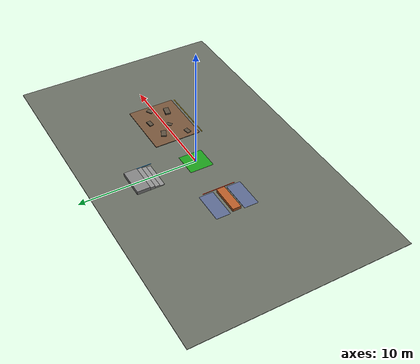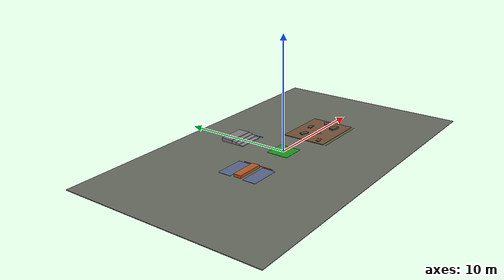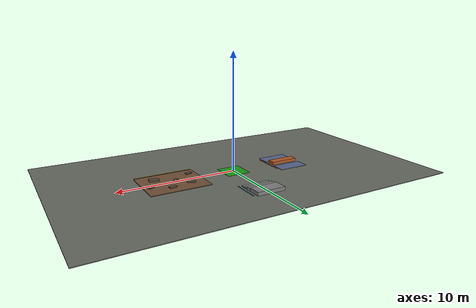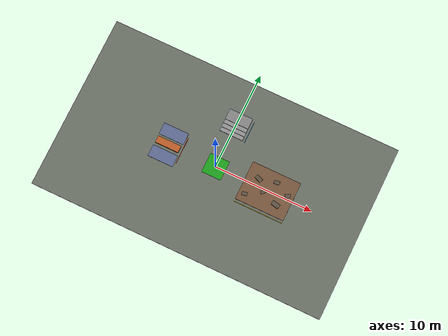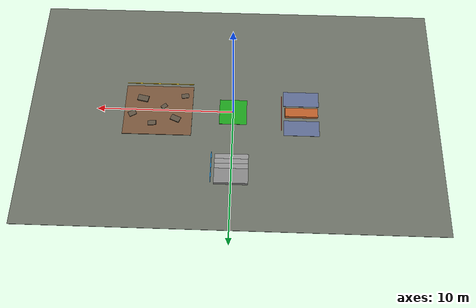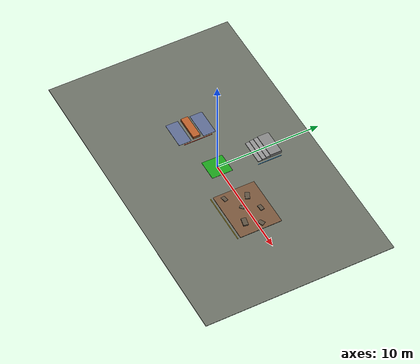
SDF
<?xml version="1.0" ?>
<sdf version="1.9">
  <world name="lynx_test_terrain">

    <!-- Physics                                                       -->
    <physics name="default_physics" type="ode">
      <max_step_size>0.001</max_step_size>
      <real_time_factor>1.0</real_time_factor>
      <real_time_update_rate>1000</real_time_update_rate>
    </physics>

    <!-- Scene / light                                                 -->
    <scene>
      <ambient>0.45 0.45 0.45 1</ambient>
      <background>0.70 0.80 0.95 1</background>
      <shadows>true</shadows>
    </scene>

    <light name="sun" type="directional">
      <cast_shadows>true</cast_shadows>
      <pose>0 0 10 0 0 0</pose>
      <diffuse>0.9 0.9 0.9 1</diffuse>
      <specular>0.2 0.2 0.2 1</specular>
      <attenuation>
        <range>1000</range>
        <constant>0.9</constant>
        <linear>0.01</linear>
        <quadratic>0.001</quadratic>
      </attenuation>
      <direction>-0.5 0.2 -1</direction>
    </light>

    <!-- Ground                                                        -->
    <model name="ground_plane">
      <static>true</static>
      <link name="ground_link">
        <collision name="collision">
          <geometry>
            <box>
              <size>30 18 0.05</size>
            </box>
          </geometry>
          <surface>
            <friction>
              <ode>
                <mu>1.4</mu>
                <mu2>1.4</mu2>
              </ode>
            </friction>
          </surface>
        </collision>
        <visual name="visual">
          <geometry>
            <box>
              <size>30 18 0.05</size>
            </box>
          </geometry>
          <material>
            <ambient>0.40 0.42 0.38 1</ambient>
            <diffuse>0.40 0.42 0.38 1</diffuse>
          </material>
        </visual>
      </link>
      <pose>0 0 -0.025 0 0 0</pose>
    </model>

    <!-- Zone labels                                                   -->

    <!-- Flat spawn/start pad -->
    <model name="spawn_pad">
      <static>true</static>
      <pose>0 0 0.005 0 0 0</pose>
      <link name="link">
        <collision name="collision">
          <geometry>
            <box>
              <size>2.0 2.0 0.02</size>
            </box>
          </geometry>
        </collision>
        <visual name="visual">
          <geometry>
            <box>
              <size>2.0 2.0 0.02</size>
            </box>
          </geometry>
          <material>
            <ambient>0.10 0.45 0.10 1</ambient>
            <diffuse>0.10 0.60 0.10 1</diffuse>
          </material>
        </visual>
      </link>
    </model>

    <!-- Zone 1: rough / uneven terrain                                -->
    <!-- Location: x = 3 to 8                                          -->

    <!-- Base rough strip -->
    <model name="rough_terrain_base">
      <static>true</static>
      <pose>5.5 0 0.025 0 0 0</pose>
      <link name="link">
        <collision name="collision">
          <geometry>
            <box>
              <size>5.0 4.0 0.05</size>
            </box>
          </geometry>
          <surface>
            <friction>
              <ode>
                <mu>1.6</mu>
                <mu2>1.6</mu2>
              </ode>
            </friction>
          </surface>
        </collision>
        <visual name="visual">
          <geometry>
            <box>
              <size>5.0 4.0 0.05</size>
            </box>
          </geometry>
          <material>
            <ambient>0.35 0.25 0.18 1</ambient>
            <diffuse>0.45 0.32 0.22 1</diffuse>
          </material>
        </visual>
      </link>
    </model>

    <!-- Uneven bumps / rocks -->
    <model name="rough_bump_01">
      <static>true</static>
      <pose>3.6 -1.2 0.055 0 0 0.2</pose>
      <link name="link">
        <collision name="collision">
          <geometry><box><size>0.55 0.35 0.10</size></box></geometry>
        </collision>
        <visual name="visual">
          <geometry><box><size>0.55 0.35 0.10</size></box></geometry>
          <material><ambient>0.25 0.22 0.18 1</ambient><diffuse>0.35 0.30 0.24 1</diffuse></material>
        </visual>
      </link>
    </model>

    <model name="rough_bump_02">
      <static>true</static>
      <pose>4.2 0.7 0.075 0 0 -0.4</pose>
      <link name="link">
        <collision name="collision">
          <geometry><box><size>0.70 0.42 0.14</size></box></geometry>
        </collision>
        <visual name="visual">
          <geometry><box><size>0.70 0.42 0.14</size></box></geometry>
          <material><ambient>0.25 0.22 0.18 1</ambient><diffuse>0.35 0.30 0.24 1</diffuse></material>
        </visual>
      </link>
    </model>

    <model name="rough_bump_03">
      <static>true</static>
      <pose>5.1 -0.3 0.045 0 0 0.7</pose>
      <link name="link">
        <collision name="collision">
          <geometry><box><size>0.45 0.30 0.08</size></box></geometry>
        </collision>
        <visual name="visual">
          <geometry><box><size>0.45 0.30 0.08</size></box></geometry>
          <material><ambient>0.25 0.22 0.18 1</ambient><diffuse>0.35 0.30 0.24 1</diffuse></material>
        </visual>
      </link>
    </model>

    <model name="rough_bump_04">
      <static>true</static>
      <pose>5.9 1.1 0.065 0 0 0.1</pose>
      <link name="link">
        <collision name="collision">
          <geometry><box><size>0.60 0.35 0.12</size></box></geometry>
        </collision>
        <visual name="visual">
          <geometry><box><size>0.60 0.35 0.12</size></box></geometry>
          <material><ambient>0.25 0.22 0.18 1</ambient><diffuse>0.35 0.30 0.24 1</diffuse></material>
        </visual>
      </link>
    </model>

    <model name="rough_bump_05">
      <static>true</static>
      <pose>6.7 -0.9 0.095 0 0 -0.2</pose>
      <link name="link">
        <collision name="collision">
          <geometry><box><size>0.80 0.45 0.18</size></box></geometry>
        </collision>
        <visual name="visual">
          <geometry><box><size>0.80 0.45 0.18</size></box></geometry>
          <material><ambient>0.25 0.22 0.18 1</ambient><diffuse>0.35 0.30 0.24 1</diffuse></material>
        </visual>
      </link>
    </model>

    <model name="rough_bump_06">
      <static>true</static>
      <pose>7.4 0.35 0.060 0 0 0.5</pose>
      <link name="link">
        <collision name="collision">
          <geometry><box><size>0.55 0.40 0.11</size></box></geometry>
        </collision>
        <visual name="visual">
          <geometry><box><size>0.55 0.40 0.11</size></box></geometry>
          <material><ambient>0.25 0.22 0.18 1</ambient><diffuse>0.35 0.30 0.24 1</diffuse></material>
        </visual>
      </link>
    </model>

    <!-- Zone 2: stairs                                                -->
    <!-- Location: x = 0, y = 5                                        -->
    <!-- Approach from y = 2.5 toward y = 5                             -->

    <model name="stairs_step_01">
      <static>true</static>
      <pose>0 3.6 0.035 0 0 0</pose>
      <link name="link">
        <collision name="collision">
          <geometry><box><size>2.4 0.40 0.07</size></box></geometry>
          <surface><friction><ode><mu>1.5</mu><mu2>1.5</mu2></ode></friction></surface>
        </collision>
        <visual name="visual">
          <geometry><box><size>2.4 0.40 0.07</size></box></geometry>
          <material><ambient>0.45 0.45 0.45 1</ambient><diffuse>0.55 0.55 0.55 1</diffuse></material>
        </visual>
      </link>
    </model>

    <model name="stairs_step_02">
      <static>true</static>
      <pose>0 4.0 0.075 0 0 0</pose>
      <link name="link">
        <collision name="collision">
          <geometry><box><size>2.4 0.40 0.15</size></box></geometry>
          <surface><friction><ode><mu>1.5</mu><mu2>1.5</mu2></ode></friction></surface>
        </collision>
        <visual name="visual">
          <geometry><box><size>2.4 0.40 0.15</size></box></geometry>
          <material><ambient>0.45 0.45 0.45 1</ambient><diffuse>0.55 0.55 0.55 1</diffuse></material>
        </visual>
      </link>
    </model>

    <model name="stairs_step_03">
      <static>true</static>
      <pose>0 4.4 0.115 0 0 0</pose>
      <link name="link">
        <collision name="collision">
          <geometry><box><size>2.4 0.40 0.23</size></box></geometry>
          <surface><friction><ode><mu>1.5</mu><mu2>1.5</mu2></ode></friction></surface>
        </collision>
        <visual name="visual">
          <geometry><box><size>2.4 0.40 0.23</size></box></geometry>
          <material><ambient>0.45 0.45 0.45 1</ambient><diffuse>0.55 0.55 0.55 1</diffuse></material>
        </visual>
      </link>
    </model>

    <model name="stairs_top_platform">
      <static>true</static>
      <pose>0 5.15 0.150 0 0 0</pose>
      <link name="link">
        <collision name="collision">
          <geometry><box><size>2.4 1.10 0.30</size></box></geometry>
          <surface><friction><ode><mu>1.5</mu><mu2>1.5</mu2></ode></friction></surface>
        </collision>
        <visual name="visual">
          <geometry><box><size>2.4 1.10 0.30</size></box></geometry>
          <material><ambient>0.42 0.42 0.42 1</ambient><diffuse>0.50 0.50 0.50 1</diffuse></material>
        </visual>
      </link>
    </model>

    <!-- Zone 3: high obstacle                                         -->
    <!-- Location: x = -5, y = 0                                       -->

    <!-- Approach pad -->
    <model name="high_obstacle_approach">
      <static>true</static>
      <pose>-5.0 -1.2 0.01 0 0 0</pose>
      <link name="link">
        <collision name="collision">
          <geometry><box><size>2.6 1.2 0.02</size></box></geometry>
        </collision>
        <visual name="visual">
          <geometry><box><size>2.6 1.2 0.02</size></box></geometry>
          <material><ambient>0.30 0.35 0.48 1</ambient><diffuse>0.35 0.40 0.55 1</diffuse></material>
        </visual>
      </link>
    </model>

    <!-- High block obstacle -->
    <model name="high_obstacle_block">
      <static>true</static>
      <pose>-5.0 0.0 0.125 0 0 0</pose>
      <link name="link">
        <collision name="collision">
          <geometry>
            <box>
              <size>2.4 0.70 0.25</size>
            </box>
          </geometry>
          <surface>
            <friction>
              <ode>
                <mu>1.6</mu>
                <mu2>1.6</mu2>
              </ode>
            </friction>
          </surface>
        </collision>
        <visual name="visual">
          <geometry>
            <box>
              <size>2.4 0.70 0.25</size>
            </box>
          </geometry>
          <material>
            <ambient>0.50 0.25 0.10 1</ambient>
            <diffuse>0.70 0.35 0.15 1</diffuse>
          </material>
        </visual>
      </link>
    </model>

    <!-- Landing pad after high obstacle -->
    <model name="high_obstacle_landing">
      <static>true</static>
      <pose>-5.0 1.2 0.01 0 0 0</pose>
      <link name="link">
        <collision name="collision">
          <geometry><box><size>2.6 1.2 0.02</size></box></geometry>
        </collision>
        <visual name="visual">
          <geometry><box><size>2.6 1.2 0.02</size></box></geometry>
          <material><ambient>0.30 0.35 0.48 1</ambient><diffuse>0.35 0.40 0.55 1</diffuse></material>
        </visual>
      </link>
    </model>

    <!-- Visual guide lines / zones                                    -->

    <!-- Rough zone marker -->
    <model name="rough_zone_marker">
      <static>true</static>
      <pose>5.5 -2.25 0.01 0 0 0</pose>
      <link name="link">
        <visual name="visual">
          <geometry><box><size>5.0 0.05 0.02</size></box></geometry>
          <material><ambient>1 0.8 0.1 1</ambient><diffuse>1 0.8 0.1 1</diffuse></material>
        </visual>
      </link>
    </model>

    <!-- Stairs zone marker -->
    <model name="stairs_zone_marker">
      <static>true</static>
      <pose>1.45 4.4 0.01 0 0 0</pose>
      <link name="link">
        <visual name="visual">
          <geometry><box><size>0.05 2.3 0.02</size></box></geometry>
          <material><ambient>0.1 0.6 1 1</ambient><diffuse>0.1 0.6 1 1</diffuse></material>
        </visual>
      </link>
    </model>

    <!-- High obstacle zone marker -->
    <model name="high_zone_marker">
      <static>true</static>
      <pose>-3.55 0.0 0.01 0 0 0</pose>
      <link name="link">
        <visual name="visual">
          <geometry><box><size>0.05 2.8 0.02</size></box></geometry>
          <material><ambient>1 0.2 0.1 1</ambient><diffuse>1 0.2 0.1 1</diffuse></material>
        </visual>
      </link>
    </model>

  </world>
</sdf>
